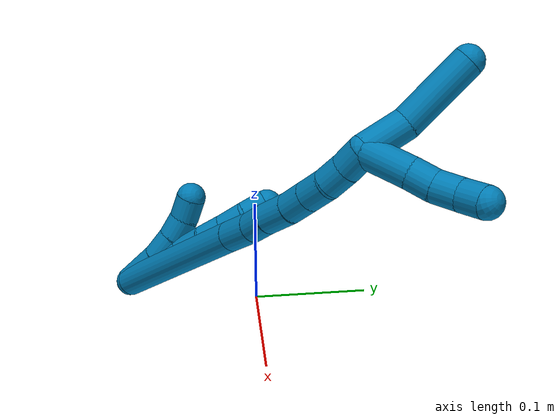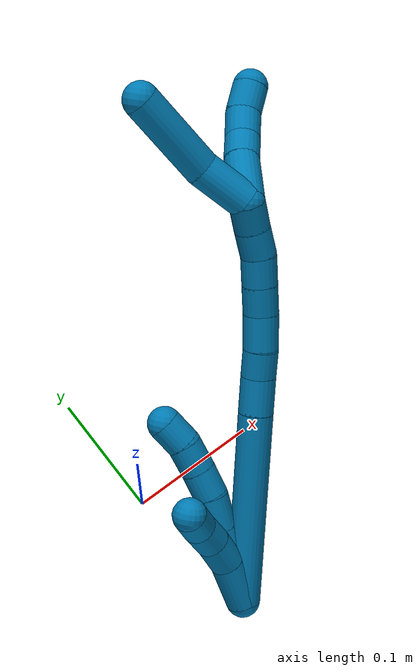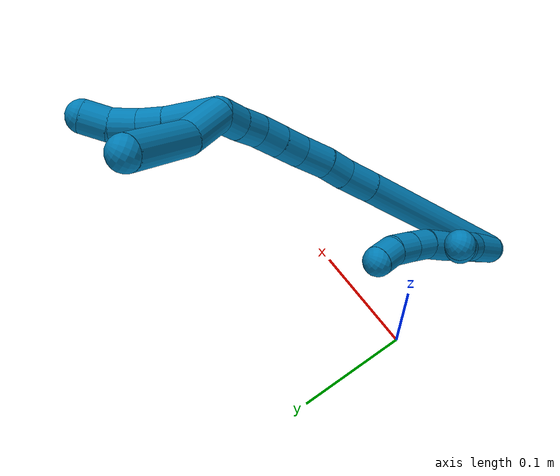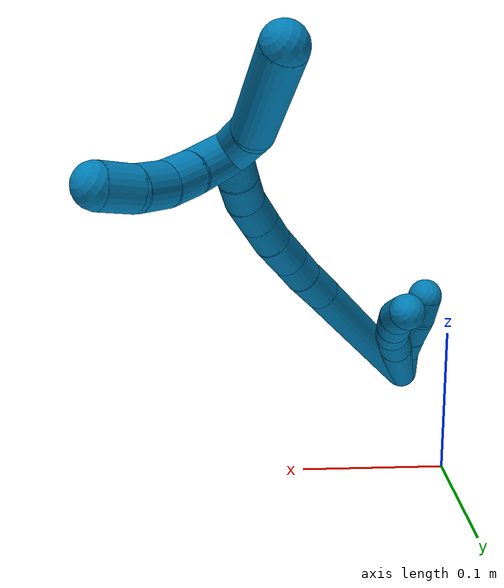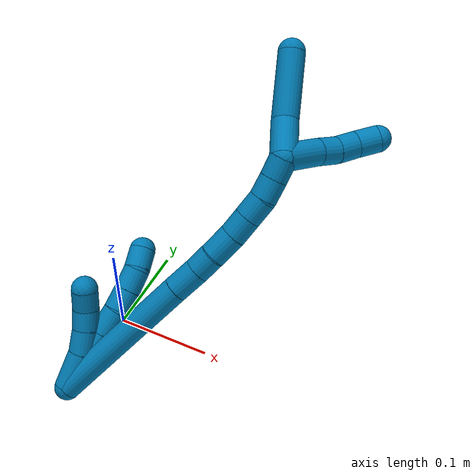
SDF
<sdf version="1.7">
 <world name="default">
  <model name="photoneo_s_sensor">
   <static>1</static>
   <pose>0 0 2 1.57079 1.57079 3.14159</pose>
   <link name="link">
    <inertial><mass>0.1</mass></inertial>
    <sensor name="sensor" type="depth">
     <update_rate>30</update_rate>
     <camera>
      <horizontal_fov>1.22</horizontal_fov>
      <image><width>1920</width><height>1200</height><format>B8G8R8</format></image>
      <clip><near>0.1</near><far>4</far></clip>
      <depth_camera><output>points</output></depth_camera>
     </camera>
     <plugin name="camera_plugin" filename="libgazebo_ros_depth_camera.so">
      <baseline>0.2</baseline>
      <alwaysOn>1</alwaysOn>
      <updateRate>0.0</updateRate>
      <cameraName>camera_ir</cameraName>
      <imageTopicName>/camera/color/image_raw</imageTopicName>
      <cameraInfoTopicName>/camera/color/camera_info</cameraInfoTopicName>
      <depthImageTopicName>/camera/depth/image_raw</depthImageTopicName>
      <depthImageCameraInfoTopicName>/camera/depth/camera_info</depthImageCameraInfoTopicName>
      <pointCloudTopicName>/camera/depth/points</pointCloudTopicName>
      <frameName>fr_optical</frameName>
      <pointCloudCutoff>0.1</pointCloudCutoff>
      <pointCloudCutoffMax>2.0</pointCloudCutoffMax>
      <distortionK1>0</distortionK1>
      <distortionK2>0</distortionK2>
      <distortionK3>0</distortionK3>
      <distortionT1>0</distortionT1>
      <distortionT2>0</distortionT2>
      <CxPrime>0</CxPrime>
      <Cx>0</Cx>
      <Cy>0</Cy>
      <focalLength>0</focalLength>
      <hackBaseline>0</hackBaseline>
     </plugin>
    </sensor>
   </link>
  </model>
  <model name="bin">
   <static>1</static>
   <link name="bottom">
    <collision name="collision-bottom">
     <pose>0 0 -0.01 0 -0 0</pose>
     <geometry><box><size>0.8 0.6 0.02</size></box></geometry>
     <surface>
      <friction><ode><mu>100</mu><mu2>100</mu2></ode></friction>
      <contact><collide_bitmask>65535</collide_bitmask></contact>
     </surface>
    </collision>
   </link>
   <link name="west_wall">
    <collision name="collision-west_wall">
     <pose>-0.41 0 0.1 0 -0 0</pose>
     <geometry><box><size>0.02 0.6 0.2</size></box></geometry>
     <surface>
      <friction><ode><mu>100</mu><mu2>100</mu2></ode></friction>
      <contact><collide_bitmask>65535</collide_bitmask></contact>
     </surface>
    </collision>
   </link>
   <link name="east_wall">
    <collision name="collision-east_wall">
     <pose>0.41 0 0.1 0 -0 0</pose>
     <geometry><box><size>0.02 0.6 0.2</size></box></geometry>
     <surface>
      <friction><ode><mu>100</mu><mu2>100</mu2></ode></friction>
      <contact><collide_bitmask>65535</collide_bitmask></contact>
     </surface>
    </collision>
   </link>
   <link name="south_wall">
    <collision name="collision-south_wall">
     <pose>0 -0.31 0.1 0 -0 0</pose>
     <geometry><box><size>0.8 0.02 0.2</size></box></geometry>
     <surface>
      <friction><ode><mu>100</mu><mu2>100</mu2></ode></friction>
      <contact><collide_bitmask>65535</collide_bitmask></contact>
     </surface>
    </collision>
   </link>
   <link name="north_wall">
    <collision name="collision-north_wall">
     <pose>0 0.31 0.1 0 -0 0</pose>
     <geometry><box><size>0.8 0.02 0.2</size></box></geometry>
     <surface>
      <friction><ode><mu>100</mu><mu2>100</mu2></ode></friction>
      <contact><collide_bitmask>65535</collide_bitmask></contact>
     </surface>
    </collision>
   </link>
  </model>
  <model name="9">
   <static>0</static>
   <link name="9">
    <collision name="collision-cylinder-e_1_2_8">
     <pose>-0.001042 -0.012691 0.027691 0.429744 -0.034195 -0.007463</pose>
     <geometry><cylinder><radius>0.0125</radius><length>0.060957</length></cylinder></geometry>
     <surface>
      <friction><ode><mu>1.16</mu><mu2>1.16</mu2><slip1>0</slip1><slip2>0</slip2></ode></friction>
      <contact><ode><kp>1e+06</kp><kd>1</kd><max_vel>0</max_vel><min_depth>0.001</min_depth></ode></contact>
     </surface>
    </collision>
    <visual name="visual-cylinder-e_1_2_8">
     <pose>-0.001042 -0.012691 0.027691 0.429744 -0.034195 -0.007463</pose>
     <geometry><cylinder><radius>0.0125</radius><length>0.060957</length></cylinder></geometry>
     <material><ambient>0 0.490196 0.709804 1</ambient></material>
    </visual>
    <collision name="collision-cylinder-e_2_8_9">
     <pose>-0.002292 -0.030456 0.067186 0.405956 -0.016207 -0.003336</pose>
     <geometry><cylinder><radius>0.0125</radius><length>0.025701</length></cylinder></geometry>
     <surface>
      <friction><ode><mu>1.16</mu><mu2>1.16</mu2><slip1>0</slip1><slip2>0</slip2></ode></friction>
      <contact><ode><kp>1e+06</kp><kd>1</kd><max_vel>0</max_vel><min_depth>0.001</min_depth></ode></contact>
     </surface>
    </collision>
    <visual name="visual-cylinder-e_2_8_9">
     <pose>-0.002292 -0.030456 0.067186 0.405956 -0.016207 -0.003336</pose>
     <geometry><cylinder><radius>0.0125</radius><length>0.025701</length></cylinder></geometry>
     <material><ambient>0 0.490196 0.709804 1</ambient></material>
    </visual>
    <collision name="collision-cylinder-e_3_9_10">
     <pose>-0.003651 -0.041199 0.087807 0.571453 -0.109304 -0.032139</pose>
     <geometry><cylinder><radius>0.0125</radius><length>0.021091</length></cylinder></geometry>
     <surface>
      <friction><ode><mu>1.16</mu><mu2>1.16</mu2><slip1>0</slip1><slip2>0</slip2></ode></friction>
      <contact><ode><kp>1e+06</kp><kd>1</kd><max_vel>0</max_vel><min_depth>0.001</min_depth></ode></contact>
     </surface>
    </collision>
    <visual name="visual-cylinder-e_3_9_10">
     <pose>-0.003651 -0.041199 0.087807 0.571453 -0.109304 -0.032139</pose>
     <geometry><cylinder><radius>0.0125</radius><length>0.021091</length></cylinder></geometry>
     <material><ambient>0 0.490196 0.709804 1</ambient></material>
    </visual>
    <collision name="collision-cylinder-e_4_10_11">
     <pose>-0.005737 -0.053139 0.105584 0.610632 -0.085329 -0.026908</pose>
     <geometry><cylinder><radius>0.0125</radius><length>0.021952</length></cylinder></geometry>
     <surface>
      <friction><ode><mu>1.16</mu><mu2>1.16</mu2><slip1>0</slip1><slip2>0</slip2></ode></friction>
      <contact><ode><kp>1e+06</kp><kd>1</kd><max_vel>0</max_vel><min_depth>0.001</min_depth></ode></contact>
     </surface>
    </collision>
    <visual name="visual-cylinder-e_4_10_11">
     <pose>-0.005737 -0.053139 0.105584 0.610632 -0.085329 -0.026908</pose>
     <geometry><cylinder><radius>0.0125</radius><length>0.021952</length></cylinder></geometry>
     <material><ambient>0 0.490196 0.709804 1</ambient></material>
    </visual>
    <collision name="collision-cylinder-e_5_11_6">
     <pose>-0.008732 -0.066951 0.121018 0.861403 -0.204415 -0.094181</pose>
     <geometry><cylinder><radius>0.0125</radius><length>0.0203</length></cylinder></geometry>
     <surface>
      <friction><ode><mu>1.16</mu><mu2>1.16</mu2><slip1>0</slip1><slip2>0</slip2></ode></friction>
      <contact><ode><kp>1e+06</kp><kd>1</kd><max_vel>0</max_vel><min_depth>0.001</min_depth></ode></contact>
     </surface>
    </collision>
    <visual name="visual-cylinder-e_5_11_6">
     <pose>-0.008732 -0.066951 0.121018 0.861403 -0.204415 -0.094181</pose>
     <geometry><cylinder><radius>0.0125</radius><length>0.0203</length></cylinder></geometry>
     <material><ambient>0 0.490196 0.709804 1</ambient></material>
    </visual>
    <collision name="collision-cylinder-e_1_2_12">
     <pose>0.002351 -0.009175 0.015593 0.531866 0.12921 0.03524</pose>
     <geometry><cylinder><radius>0.0125</radius><length>0.036488</length></cylinder></geometry>
     <surface>
      <friction><ode><mu>1.16</mu><mu2>1.16</mu2><slip1>0</slip1><slip2>0</slip2></ode></friction>
      <contact><ode><kp>1e+06</kp><kd>1</kd><max_vel>0</max_vel><min_depth>0.001</min_depth></ode></contact>
     </surface>
    </collision>
    <visual name="visual-cylinder-e_1_2_12">
     <pose>0.002351 -0.009175 0.015593 0.531866 0.12921 0.03524</pose>
     <geometry><cylinder><radius>0.0125</radius><length>0.036488</length></cylinder></geometry>
     <material><ambient>0 0.490196 0.709804 1</ambient></material>
    </visual>
    <collision name="collision-cylinder-e_2_12_13">
     <pose>0.007444 -0.025876 0.039642 0.727201 0.237667 0.090803</pose>
     <geometry><cylinder><radius>0.0125</radius><length>0.023294</length></cylinder></geometry>
     <surface>
      <friction><ode><mu>1.16</mu><mu2>1.16</mu2><slip1>0</slip1><slip2>0</slip2></ode></friction>
      <contact><ode><kp>1e+06</kp><kd>1</kd><max_vel>0</max_vel><min_depth>0.001</min_depth></ode></contact>
     </surface>
    </collision>
    <visual name="visual-cylinder-e_2_12_13">
     <pose>0.007444 -0.025876 0.039642 0.727201 0.237667 0.090803</pose>
     <geometry><cylinder><radius>0.0125</radius><length>0.023294</length></cylinder></geometry>
     <material><ambient>0 0.490196 0.709804 1</ambient></material>
    </visual>
    <collision name="collision-cylinder-e_3_13_14">
     <pose>0.013652 -0.040306 0.054514 0.822162 0.352382 0.154908</pose>
     <geometry><cylinder><radius>0.0125</radius><length>0.020086</length></cylinder></geometry>
     <surface>
      <friction><ode><mu>1.16</mu><mu2>1.16</mu2><slip1>0</slip1><slip2>0</slip2></ode></friction>
      <contact><ode><kp>1e+06</kp><kd>1</kd><max_vel>0</max_vel><min_depth>0.001</min_depth></ode></contact>
     </surface>
    </collision>
    <visual name="visual-cylinder-e_3_13_14">
     <pose>0.013652 -0.040306 0.054514 0.822162 0.352382 0.154908</pose>
     <geometry><cylinder><radius>0.0125</radius><length>0.020086</length></cylinder></geometry>
     <material><ambient>0 0.490196 0.709804 1</ambient></material>
    </visual>
    <collision name="collision-cylinder-e_4_14_5">
     <pose>0.02248 -0.053026 0.067155 0.751201 0.56177 0.226559</pose>
     <geometry><cylinder><radius>0.0125</radius><length>0.020132</length></cylinder></geometry>
     <surface>
      <friction><ode><mu>1.16</mu><mu2>1.16</mu2><slip1>0</slip1><slip2>0</slip2></ode></friction>
      <contact><ode><kp>1e+06</kp><kd>1</kd><max_vel>0</max_vel><min_depth>0.001</min_depth></ode></contact>
     </surface>
    </collision>
    <visual name="visual-cylinder-e_4_14_5">
     <pose>0.02248 -0.053026 0.067155 0.751201 0.56177 0.226559</pose>
     <geometry><cylinder><radius>0.0125</radius><length>0.020132</length></cylinder></geometry>
     <material><ambient>0 0.490196 0.709804 1</ambient></material>
    </visual>
    <collision name="collision-cylinder-e_1_2_15">
     <pose>0.003606 -0.007189 0.072276 0.099144 0.049613 0.002462</pose>
     <geometry><cylinder><radius>0.0125</radius><length>0.145444</length></cylinder></geometry>
     <surface>
      <friction><ode><mu>1.16</mu><mu2>1.16</mu2><slip1>0</slip1><slip2>0</slip2></ode></friction>
      <contact><ode><kp>1e+06</kp><kd>1</kd><max_vel>0</max_vel><min_depth>0.001</min_depth></ode></contact>
     </surface>
    </collision>
    <visual name="visual-cylinder-e_1_2_15">
     <pose>0.003606 -0.007189 0.072276 0.099144 0.049613 0.002462</pose>
     <geometry><cylinder><radius>0.0125</radius><length>0.145444</length></cylinder></geometry>
     <material><ambient>0 0.490196 0.709804 1</ambient></material>
    </visual>
    <collision name="collision-cylinder-e_2_15_16">
     <pose>0.007646 -0.015597 0.157977 0.090542 0.032081 0.001453</pose>
     <geometry><cylinder><radius>0.0125</radius><length>0.026975</length></cylinder></geometry>
     <surface>
      <friction><ode><mu>1.16</mu><mu2>1.16</mu2><slip1>0</slip1><slip2>0</slip2></ode></friction>
      <contact><ode><kp>1e+06</kp><kd>1</kd><max_vel>0</max_vel><min_depth>0.001</min_depth></ode></contact>
     </surface>
    </collision>
    <visual name="visual-cylinder-e_2_15_16">
     <pose>0.007646 -0.015597 0.157977 0.090542 0.032081 0.001453</pose>
     <geometry><cylinder><radius>0.0125</radius><length>0.026975</length></cylinder></geometry>
     <material><ambient>0 0.490196 0.709804 1</ambient></material>
    </visual>
    <collision name="collision-cylinder-e_3_16_17">
     <pose>0.009262 -0.017839 0.18131 0.102845 0.118345 0.006098</pose>
     <geometry><cylinder><radius>0.0125</radius><length>0.020061</length></cylinder></geometry>
     <surface>
      <friction><ode><mu>1.16</mu><mu2>1.16</mu2><slip1>0</slip1><slip2>0</slip2></ode></friction>
      <contact><ode><kp>1e+06</kp><kd>1</kd><max_vel>0</max_vel><min_depth>0.001</min_depth></ode></contact>
     </surface>
    </collision>
    <visual name="visual-cylinder-e_3_16_17">
     <pose>0.009262 -0.017839 0.18131 0.102845 0.118345 0.006098</pose>
     <geometry><cylinder><radius>0.0125</radius><length>0.020061</length></cylinder></geometry>
     <material><ambient>0 0.490196 0.709804 1</ambient></material>
    </visual>
    <collision name="collision-cylinder-e_4_17_18">
     <pose>0.010799 -0.020891 0.203844 0.15937 0.027548 0.0022</pose>
     <geometry><cylinder><radius>0.0125</radius><length>0.025586</length></cylinder></geometry>
     <surface>
      <friction><ode><mu>1.16</mu><mu2>1.16</mu2><slip1>0</slip1><slip2>0</slip2></ode></friction>
      <contact><ode><kp>1e+06</kp><kd>1</kd><max_vel>0</max_vel><min_depth>0.001</min_depth></ode></contact>
     </surface>
    </collision>
    <visual name="visual-cylinder-e_4_17_18">
     <pose>0.010799 -0.020891 0.203844 0.15937 0.027548 0.0022</pose>
     <geometry><cylinder><radius>0.0125</radius><length>0.025586</length></cylinder></geometry>
     <material><ambient>0 0.490196 0.709804 1</ambient></material>
    </visual>
    <collision name="collision-cylinder-e_5_18_19">
     <pose>0.012325 -0.025282 0.22666 0.227769 0.111744 0.012794</pose>
     <geometry><cylinder><radius>0.0125</radius><length>0.021053</length></cylinder></geometry>
     <surface>
      <friction><ode><mu>1.16</mu><mu2>1.16</mu2><slip1>0</slip1><slip2>0</slip2></ode></friction>
      <contact><ode><kp>1e+06</kp><kd>1</kd><max_vel>0</max_vel><min_depth>0.001</min_depth></ode></contact>
     </surface>
    </collision>
    <visual name="visual-cylinder-e_5_18_19">
     <pose>0.012325 -0.025282 0.22666 0.227769 0.111744 0.012794</pose>
     <geometry><cylinder><radius>0.0125</radius><length>0.021053</length></cylinder></geometry>
     <material><ambient>0 0.490196 0.709804 1</ambient></material>
    </visual>
    <collision name="collision-cylinder-e_6_19_20">
     <pose>0.014669 -0.02999 0.246953 0.228127 0.112371 0.012887</pose>
     <geometry><cylinder><radius>0.0125</radius><length>0.020874</length></cylinder></geometry>
     <surface>
      <friction><ode><mu>1.16</mu><mu2>1.16</mu2><slip1>0</slip1><slip2>0</slip2></ode></friction>
      <contact><ode><kp>1e+06</kp><kd>1</kd><max_vel>0</max_vel><min_depth>0.001</min_depth></ode></contact>
     </surface>
    </collision>
    <visual name="visual-cylinder-e_6_19_20">
     <pose>0.014669 -0.02999 0.246953 0.228127 0.112371 0.012887</pose>
     <geometry><cylinder><radius>0.0125</radius><length>0.020874</length></cylinder></geometry>
     <material><ambient>0 0.490196 0.709804 1</ambient></material>
    </visual>
    <collision name="collision-cylinder-e_7_20_21">
     <pose>0.01734 -0.03649 0.266027 0.433726 0.150632 0.033248</pose>
     <geometry><cylinder><radius>0.0125</radius><length>0.02</length></cylinder></geometry>
     <surface>
      <friction><ode><mu>1.16</mu><mu2>1.16</mu2><slip1>0</slip1><slip2>0</slip2></ode></friction>
      <contact><ode><kp>1e+06</kp><kd>1</kd><max_vel>0</max_vel><min_depth>0.001</min_depth></ode></contact>
     </surface>
    </collision>
    <visual name="visual-cylinder-e_7_20_21">
     <pose>0.01734 -0.03649 0.266027 0.433726 0.150632 0.033248</pose>
     <geometry><cylinder><radius>0.0125</radius><length>0.02</length></cylinder></geometry>
     <material><ambient>0 0.490196 0.709804 1</ambient></material>
    </visual>
    <collision name="collision-cylinder-e_8_21_1">
     <pose>0.021237 -0.044666 0.28384 0.426781 0.241808 0.052642</pose>
     <geometry><cylinder><radius>0.0125</radius><length>0.020008</length></cylinder></geometry>
     <surface>
      <friction><ode><mu>1.16</mu><mu2>1.16</mu2><slip1>0</slip1><slip2>0</slip2></ode></friction>
      <contact><ode><kp>1e+06</kp><kd>1</kd><max_vel>0</max_vel><min_depth>0.001</min_depth></ode></contact>
     </surface>
    </collision>
    <visual name="visual-cylinder-e_8_21_1">
     <pose>0.021237 -0.044666 0.28384 0.426781 0.241808 0.052642</pose>
     <geometry><cylinder><radius>0.0125</radius><length>0.020008</length></cylinder></geometry>
     <material><ambient>0 0.490196 0.709804 1</ambient></material>
    </visual>
    <collision name="collision-cylinder-e_1_1_22">
     <pose>0.009332 -0.047869 0.305106 -0.065708 -0.854365 0.02992</pose>
     <geometry><cylinder><radius>0.0125</radius><length>0.037922</length></cylinder></geometry>
     <surface>
      <friction><ode><mu>1.16</mu><mu2>1.16</mu2><slip1>0</slip1><slip2>0</slip2></ode></friction>
      <contact><ode><kp>1e+06</kp><kd>1</kd><max_vel>0</max_vel><min_depth>0.001</min_depth></ode></contact>
     </surface>
    </collision>
    <visual name="visual-cylinder-e_1_1_22">
     <pose>0.009332 -0.047869 0.305106 -0.065708 -0.854365 0.02992</pose>
     <geometry><cylinder><radius>0.0125</radius><length>0.037922</length></cylinder></geometry>
     <material><ambient>0 0.490196 0.709804 1</ambient></material>
    </visual>
    <collision name="collision-cylinder-e_2_22_23">
     <pose>-0.012118 -0.045525 0.324484 -0.216019 -0.787634 0.090051</pose>
     <geometry><cylinder><radius>0.0125</radius><length>0.02018</length></cylinder></geometry>
     <surface>
      <friction><ode><mu>1.16</mu><mu2>1.16</mu2><slip1>0</slip1><slip2>0</slip2></ode></friction>
      <contact><ode><kp>1e+06</kp><kd>1</kd><max_vel>0</max_vel><min_depth>0.001</min_depth></ode></contact>
     </surface>
    </collision>
    <visual name="visual-cylinder-e_2_22_23">
     <pose>-0.012118 -0.045525 0.324484 -0.216019 -0.787634 0.090051</pose>
     <geometry><cylinder><radius>0.0125</radius><length>0.02018</length></cylinder></geometry>
     <material><ambient>0 0.490196 0.709804 1</ambient></material>
    </visual>
    <collision name="collision-cylinder-e_3_23_24">
     <pose>-0.02526 -0.043183 0.33992 -0.095957 -0.612805 0.030379</pose>
     <geometry><cylinder><radius>0.0125</radius><length>0.020833</length></cylinder></geometry>
     <surface>
      <friction><ode><mu>1.16</mu><mu2>1.16</mu2><slip1>0</slip1><slip2>0</slip2></ode></friction>
      <contact><ode><kp>1e+06</kp><kd>1</kd><max_vel>0</max_vel><min_depth>0.001</min_depth></ode></contact>
     </surface>
    </collision>
    <visual name="visual-cylinder-e_3_23_24">
     <pose>-0.02526 -0.043183 0.33992 -0.095957 -0.612805 0.030379</pose>
     <geometry><cylinder><radius>0.0125</radius><length>0.020833</length></cylinder></geometry>
     <material><ambient>0 0.490196 0.709804 1</ambient></material>
    </visual>
    <collision name="collision-cylinder-e_4_24_4">
     <pose>-0.035136 -0.039934 0.357884 -0.251091 -0.377788 0.048246</pose>
     <geometry><cylinder><radius>0.0125</radius><length>0.021064</length></cylinder></geometry>
     <surface>
      <friction><ode><mu>1.16</mu><mu2>1.16</mu2><slip1>0</slip1><slip2>0</slip2></ode></friction>
      <contact><ode><kp>1e+06</kp><kd>1</kd><max_vel>0</max_vel><min_depth>0.001</min_depth></ode></contact>
     </surface>
    </collision>
    <visual name="visual-cylinder-e_4_24_4">
     <pose>-0.035136 -0.039934 0.357884 -0.251091 -0.377788 0.048246</pose>
     <geometry><cylinder><radius>0.0125</radius><length>0.021064</length></cylinder></geometry>
     <material><ambient>0 0.490196 0.709804 1</ambient></material>
    </visual>
    <collision name="collision-cylinder-e_1_1_25">
     <pose>0.01969 -0.064479 0.301713 1.05128 -0.21339 -0.124094</pose>
     <geometry><cylinder><radius>0.0125</radius><length>0.03723</length></cylinder></geometry>
     <surface>
      <friction><ode><mu>1.16</mu><mu2>1.16</mu2><slip1>0</slip1><slip2>0</slip2></ode></friction>
      <contact><ode><kp>1e+06</kp><kd>1</kd><max_vel>0</max_vel><min_depth>0.001</min_depth></ode></contact>
     </surface>
    </collision>
    <visual name="visual-cylinder-e_1_1_25">
     <pose>0.01969 -0.064479 0.301713 1.05128 -0.21339 -0.124094</pose>
     <geometry><cylinder><radius>0.0125</radius><length>0.03723</length></cylinder></geometry>
     <material><ambient>0 0.490196 0.709804 1</ambient></material>
    </visual>
    <collision name="collision-cylinder-e_2_25_3">
     <pose>0.018226 -0.104524 0.330511 0.886993 0.079054 0.037571</pose>
     <geometry><cylinder><radius>0.0125</radius><length>0.06277</length></cylinder></geometry>
     <surface>
      <friction><ode><mu>1.16</mu><mu2>1.16</mu2><slip1>0</slip1><slip2>0</slip2></ode></friction>
      <contact><ode><kp>1e+06</kp><kd>1</kd><max_vel>0</max_vel><min_depth>0.001</min_depth></ode></contact>
     </surface>
    </collision>
    <visual name="visual-cylinder-e_2_25_3">
     <pose>0.018226 -0.104524 0.330511 0.886993 0.079054 0.037571</pose>
     <geometry><cylinder><radius>0.0125</radius><length>0.06277</length></cylinder></geometry>
     <material><ambient>0 0.490196 0.709804 1</ambient></material>
    </visual>
    <collision name="collision-sphere-3">
     <pose>0.020705 -0.128777 0.350276 0 -0 0</pose>
     <geometry><sphere><radius>0.0125</radius></sphere></geometry>
     <surface>
      <friction><ode><mu>1.16</mu><mu2>1.16</mu2><slip1>0</slip1><slip2>0</slip2></ode></friction>
      <contact><ode><kp>1e+06</kp><kd>1</kd><max_vel>0</max_vel><min_depth>0.001</min_depth></ode></contact>
     </surface>
    </collision>
    <visual name="visual-sphere-3">
     <pose>0.020705 -0.128777 0.350276 0 -0 0</pose>
     <geometry><sphere><radius>0.0125</radius></sphere></geometry>
     <material><ambient>0 0.490196 0.709804 1</ambient></material>
    </visual>
    <collision name="collision-sphere-25">
     <pose>0.015748 -0.080271 0.310745 0 -0 0</pose>
     <geometry><sphere><radius>0.0125</radius></sphere></geometry>
     <surface>
      <friction><ode><mu>1.16</mu><mu2>1.16</mu2><slip1>0</slip1><slip2>0</slip2></ode></friction>
      <contact><ode><kp>1e+06</kp><kd>1</kd><max_vel>0</max_vel><min_depth>0.001</min_depth></ode></contact>
     </surface>
    </collision>
    <visual name="visual-sphere-25">
     <pose>0.015748 -0.080271 0.310745 0 -0 0</pose>
     <geometry><sphere><radius>0.0125</radius></sphere></geometry>
     <material><ambient>0 0.490196 0.709804 1</ambient></material>
    </visual>
    <collision name="collision-sphere-4">
     <pose>-0.039021 -0.037502 0.367367 0 -0 0</pose>
     <geometry><sphere><radius>0.0125</radius></sphere></geometry>
     <surface>
      <friction><ode><mu>1.16</mu><mu2>1.16</mu2><slip1>0</slip1><slip2>0</slip2></ode></friction>
      <contact><ode><kp>1e+06</kp><kd>1</kd><max_vel>0</max_vel><min_depth>0.001</min_depth></ode></contact>
     </surface>
    </collision>
    <visual name="visual-sphere-4">
     <pose>-0.039021 -0.037502 0.367367 0 -0 0</pose>
     <geometry><sphere><radius>0.0125</radius></sphere></geometry>
     <material><ambient>0 0.490196 0.709804 1</ambient></material>
    </visual>
    <collision name="collision-sphere-24">
     <pose>-0.031251 -0.042367 0.348402 0 -0 0</pose>
     <geometry><sphere><radius>0.0125</radius></sphere></geometry>
     <surface>
      <friction><ode><mu>1.16</mu><mu2>1.16</mu2><slip1>0</slip1><slip2>0</slip2></ode></friction>
      <contact><ode><kp>1e+06</kp><kd>1</kd><max_vel>0</max_vel><min_depth>0.001</min_depth></ode></contact>
     </surface>
    </collision>
    <visual name="visual-sphere-24">
     <pose>-0.031251 -0.042367 0.348402 0 -0 0</pose>
     <geometry><sphere><radius>0.0125</radius></sphere></geometry>
     <material><ambient>0 0.490196 0.709804 1</ambient></material>
    </visual>
    <collision name="collision-sphere-23">
     <pose>-0.019268 -0.044 0.331438 0 -0 0</pose>
     <geometry><sphere><radius>0.0125</radius></sphere></geometry>
     <surface>
      <friction><ode><mu>1.16</mu><mu2>1.16</mu2><slip1>0</slip1><slip2>0</slip2></ode></friction>
      <contact><ode><kp>1e+06</kp><kd>1</kd><max_vel>0</max_vel><min_depth>0.001</min_depth></ode></contact>
     </surface>
    </collision>
    <visual name="visual-sphere-23">
     <pose>-0.019268 -0.044 0.331438 0 -0 0</pose>
     <geometry><sphere><radius>0.0125</radius></sphere></geometry>
     <material><ambient>0 0.490196 0.709804 1</ambient></material>
    </visual>
    <collision name="collision-sphere-22">
     <pose>-0.004967 -0.047051 0.317531 0 -0 0</pose>
     <geometry><sphere><radius>0.0125</radius></sphere></geometry>
     <surface>
      <friction><ode><mu>1.16</mu><mu2>1.16</mu2><slip1>0</slip1><slip2>0</slip2></ode></friction>
      <contact><ode><kp>1e+06</kp><kd>1</kd><max_vel>0</max_vel><min_depth>0.001</min_depth></ode></contact>
     </surface>
    </collision>
    <visual name="visual-sphere-22">
     <pose>-0.004967 -0.047051 0.317531 0 -0 0</pose>
     <geometry><sphere><radius>0.0125</radius></sphere></geometry>
     <material><ambient>0 0.490196 0.709804 1</ambient></material>
    </visual>
    <collision name="collision-sphere-1">
     <pose>0.023632 -0.048686 0.292681 0 -0 0</pose>
     <geometry><sphere><radius>0.0125</radius></sphere></geometry>
     <surface>
      <friction><ode><mu>1.16</mu><mu2>1.16</mu2><slip1>0</slip1><slip2>0</slip2></ode></friction>
      <contact><ode><kp>1e+06</kp><kd>1</kd><max_vel>0</max_vel><min_depth>0.001</min_depth></ode></contact>
     </surface>
    </collision>
    <visual name="visual-sphere-1">
     <pose>0.023632 -0.048686 0.292681 0 -0 0</pose>
     <geometry><sphere><radius>0.0125</radius></sphere></geometry>
     <material><ambient>0 0.490196 0.709804 1</ambient></material>
    </visual>
    <collision name="collision-sphere-21">
     <pose>0.018841 -0.040645 0.274998 0 -0 0</pose>
     <geometry><sphere><radius>0.0125</radius></sphere></geometry>
     <surface>
      <friction><ode><mu>1.16</mu><mu2>1.16</mu2><slip1>0</slip1><slip2>0</slip2></ode></friction>
      <contact><ode><kp>1e+06</kp><kd>1</kd><max_vel>0</max_vel><min_depth>0.001</min_depth></ode></contact>
     </surface>
    </collision>
    <visual name="visual-sphere-21">
     <pose>0.018841 -0.040645 0.274998 0 -0 0</pose>
     <geometry><sphere><radius>0.0125</radius></sphere></geometry>
     <material><ambient>0 0.490196 0.709804 1</ambient></material>
    </visual>
    <collision name="collision-sphere-6">
     <pose>-0.010793 -0.074492 0.127491 0 -0 0</pose>
     <geometry><sphere><radius>0.0125</radius></sphere></geometry>
     <surface>
      <friction><ode><mu>1.16</mu><mu2>1.16</mu2><slip1>0</slip1><slip2>0</slip2></ode></friction>
      <contact><ode><kp>1e+06</kp><kd>1</kd><max_vel>0</max_vel><min_depth>0.001</min_depth></ode></contact>
     </surface>
    </collision>
    <visual name="visual-sphere-6">
     <pose>-0.010793 -0.074492 0.127491 0 -0 0</pose>
     <geometry><sphere><radius>0.0125</radius></sphere></geometry>
     <material><ambient>0 0.490196 0.709804 1</ambient></material>
    </visual>
    <collision name="collision-sphere-11">
     <pose>-0.006672 -0.05941 0.114544 0 -0 0</pose>
     <geometry><sphere><radius>0.0125</radius></sphere></geometry>
     <surface>
      <friction><ode><mu>1.16</mu><mu2>1.16</mu2><slip1>0</slip1><slip2>0</slip2></ode></friction>
      <contact><ode><kp>1e+06</kp><kd>1</kd><max_vel>0</max_vel><min_depth>0.001</min_depth></ode></contact>
     </surface>
    </collision>
    <visual name="visual-sphere-11">
     <pose>-0.006672 -0.05941 0.114544 0 -0 0</pose>
     <geometry><sphere><radius>0.0125</radius></sphere></geometry>
     <material><ambient>0 0.490196 0.709804 1</ambient></material>
    </visual>
    <collision name="collision-sphere-10">
     <pose>-0.004801 -0.046869 0.096624 0 -0 0</pose>
     <geometry><sphere><radius>0.0125</radius></sphere></geometry>
     <surface>
      <friction><ode><mu>1.16</mu><mu2>1.16</mu2><slip1>0</slip1><slip2>0</slip2></ode></friction>
      <contact><ode><kp>1e+06</kp><kd>1</kd><max_vel>0</max_vel><min_depth>0.001</min_depth></ode></contact>
     </surface>
    </collision>
    <visual name="visual-sphere-10">
     <pose>-0.004801 -0.046869 0.096624 0 -0 0</pose>
     <geometry><sphere><radius>0.0125</radius></sphere></geometry>
     <material><ambient>0 0.490196 0.709804 1</ambient></material>
    </visual>
    <collision name="collision-sphere-9">
     <pose>-0.0025 -0.03553 0.07899 0 -0 0</pose>
     <geometry><sphere><radius>0.0125</radius></sphere></geometry>
     <surface>
      <friction><ode><mu>1.16</mu><mu2>1.16</mu2><slip1>0</slip1><slip2>0</slip2></ode></friction>
      <contact><ode><kp>1e+06</kp><kd>1</kd><max_vel>0</max_vel><min_depth>0.001</min_depth></ode></contact>
     </surface>
    </collision>
    <visual name="visual-sphere-9">
     <pose>-0.0025 -0.03553 0.07899 0 -0 0</pose>
     <geometry><sphere><radius>0.0125</radius></sphere></geometry>
     <material><ambient>0 0.490196 0.709804 1</ambient></material>
    </visual>
    <collision name="collision-sphere-2">
     <geometry><sphere><radius>0.0125</radius></sphere></geometry>
     <surface>
      <friction><ode><mu>1.16</mu><mu2>1.16</mu2><slip1>0</slip1><slip2>0</slip2></ode></friction>
      <contact><ode><kp>1e+06</kp><kd>1</kd><max_vel>0</max_vel><min_depth>0.001</min_depth></ode></contact>
     </surface>
    </collision>
    <visual name="visual-sphere-2">
     <geometry><sphere><radius>0.0125</radius></sphere></geometry>
     <material><ambient>0 0.490196 0.709804 1</ambient></material>
    </visual>
    <collision name="collision-sphere-19">
     <pose>0.013499 -0.027644 0.236851 0 -0 0</pose>
     <geometry><sphere><radius>0.0125</radius></sphere></geometry>
     <surface>
      <friction><ode><mu>1.16</mu><mu2>1.16</mu2><slip1>0</slip1><slip2>0</slip2></ode></friction>
      <contact><ode><kp>1e+06</kp><kd>1</kd><max_vel>0</max_vel><min_depth>0.001</min_depth></ode></contact>
     </surface>
    </collision>
    <visual name="visual-sphere-19">
     <pose>0.013499 -0.027644 0.236851 0 -0 0</pose>
     <geometry><sphere><radius>0.0125</radius></sphere></geometry>
     <material><ambient>0 0.490196 0.709804 1</ambient></material>
    </visual>
    <collision name="collision-sphere-8">
     <pose>-0.002084 -0.025382 0.055382 0 -0 0</pose>
     <geometry><sphere><radius>0.0125</radius></sphere></geometry>
     <surface>
      <friction><ode><mu>1.16</mu><mu2>1.16</mu2><slip1>0</slip1><slip2>0</slip2></ode></friction>
      <contact><ode><kp>1e+06</kp><kd>1</kd><max_vel>0</max_vel><min_depth>0.001</min_depth></ode></contact>
     </surface>
    </collision>
    <visual name="visual-sphere-8">
     <pose>-0.002084 -0.025382 0.055382 0 -0 0</pose>
     <geometry><sphere><radius>0.0125</radius></sphere></geometry>
     <material><ambient>0 0.490196 0.709804 1</ambient></material>
    </visual>
    <collision name="collision-sphere-12">
     <pose>0.004702 -0.018351 0.031186 0 -0 0</pose>
     <geometry><sphere><radius>0.0125</radius></sphere></geometry>
     <surface>
      <friction><ode><mu>1.16</mu><mu2>1.16</mu2><slip1>0</slip1><slip2>0</slip2></ode></friction>
      <contact><ode><kp>1e+06</kp><kd>1</kd><max_vel>0</max_vel><min_depth>0.001</min_depth></ode></contact>
     </surface>
    </collision>
    <visual name="visual-sphere-12">
     <pose>0.004702 -0.018351 0.031186 0 -0 0</pose>
     <geometry><sphere><radius>0.0125</radius></sphere></geometry>
     <material><ambient>0 0.490196 0.709804 1</ambient></material>
    </visual>
    <collision name="collision-sphere-13">
     <pose>0.010186 -0.033401 0.048098 0 -0 0</pose>
     <geometry><sphere><radius>0.0125</radius></sphere></geometry>
     <surface>
      <friction><ode><mu>1.16</mu><mu2>1.16</mu2><slip1>0</slip1><slip2>0</slip2></ode></friction>
      <contact><ode><kp>1e+06</kp><kd>1</kd><max_vel>0</max_vel><min_depth>0.001</min_depth></ode></contact>
     </surface>
    </collision>
    <visual name="visual-sphere-13">
     <pose>0.010186 -0.033401 0.048098 0 -0 0</pose>
     <geometry><sphere><radius>0.0125</radius></sphere></geometry>
     <material><ambient>0 0.490196 0.709804 1</ambient></material>
    </visual>
    <collision name="collision-sphere-14">
     <pose>0.017118 -0.047212 0.060929 0 -0 0</pose>
     <geometry><sphere><radius>0.0125</radius></sphere></geometry>
     <surface>
      <friction><ode><mu>1.16</mu><mu2>1.16</mu2><slip1>0</slip1><slip2>0</slip2></ode></friction>
      <contact><ode><kp>1e+06</kp><kd>1</kd><max_vel>0</max_vel><min_depth>0.001</min_depth></ode></contact>
     </surface>
    </collision>
    <visual name="visual-sphere-14">
     <pose>0.017118 -0.047212 0.060929 0 -0 0</pose>
     <geometry><sphere><radius>0.0125</radius></sphere></geometry>
     <material><ambient>0 0.490196 0.709804 1</ambient></material>
    </visual>
    <collision name="collision-sphere-5">
     <pose>0.027842 -0.05884 0.073382 0 -0 0</pose>
     <geometry><sphere><radius>0.0125</radius></sphere></geometry>
     <surface>
      <friction><ode><mu>1.16</mu><mu2>1.16</mu2><slip1>0</slip1><slip2>0</slip2></ode></friction>
      <contact><ode><kp>1e+06</kp><kd>1</kd><max_vel>0</max_vel><min_depth>0.001</min_depth></ode></contact>
     </surface>
    </collision>
    <visual name="visual-sphere-5">
     <pose>0.027842 -0.05884 0.073382 0 -0 0</pose>
     <geometry><sphere><radius>0.0125</radius></sphere></geometry>
     <material><ambient>0 0.490196 0.709804 1</ambient></material>
    </visual>
    <collision name="collision-sphere-15">
     <pose>0.007213 -0.014379 0.144551 0 -0 0</pose>
     <geometry><sphere><radius>0.0125</radius></sphere></geometry>
     <surface>
      <friction><ode><mu>1.16</mu><mu2>1.16</mu2><slip1>0</slip1><slip2>0</slip2></ode></friction>
      <contact><ode><kp>1e+06</kp><kd>1</kd><max_vel>0</max_vel><min_depth>0.001</min_depth></ode></contact>
     </surface>
    </collision>
    <visual name="visual-sphere-15">
     <pose>0.007213 -0.014379 0.144551 0 -0 0</pose>
     <geometry><sphere><radius>0.0125</radius></sphere></geometry>
     <material><ambient>0 0.490196 0.709804 1</ambient></material>
    </visual>
    <collision name="collision-sphere-16">
     <pose>0.008078 -0.016816 0.171403 0 -0 0</pose>
     <geometry><sphere><radius>0.0125</radius></sphere></geometry>
     <surface>
      <friction><ode><mu>1.16</mu><mu2>1.16</mu2><slip1>0</slip1><slip2>0</slip2></ode></friction>
      <contact><ode><kp>1e+06</kp><kd>1</kd><max_vel>0</max_vel><min_depth>0.001</min_depth></ode></contact>
     </surface>
    </collision>
    <visual name="visual-sphere-16">
     <pose>0.008078 -0.016816 0.171403 0 -0 0</pose>
     <geometry><sphere><radius>0.0125</radius></sphere></geometry>
     <material><ambient>0 0.490196 0.709804 1</ambient></material>
    </visual>
    <collision name="collision-sphere-17">
     <pose>0.010447 -0.018861 0.191218 0 -0 0</pose>
     <geometry><sphere><radius>0.0125</radius></sphere></geometry>
     <surface>
      <friction><ode><mu>1.16</mu><mu2>1.16</mu2><slip1>0</slip1><slip2>0</slip2></ode></friction>
      <contact><ode><kp>1e+06</kp><kd>1</kd><max_vel>0</max_vel><min_depth>0.001</min_depth></ode></contact>
     </surface>
    </collision>
    <visual name="visual-sphere-17">
     <pose>0.010447 -0.018861 0.191218 0 -0 0</pose>
     <geometry><sphere><radius>0.0125</radius></sphere></geometry>
     <material><ambient>0 0.490196 0.709804 1</ambient></material>
    </visual>
    <collision name="collision-sphere-18">
     <pose>0.011151 -0.02292 0.21647 0 -0 0</pose>
     <geometry><sphere><radius>0.0125</radius></sphere></geometry>
     <surface>
      <friction><ode><mu>1.16</mu><mu2>1.16</mu2><slip1>0</slip1><slip2>0</slip2></ode></friction>
      <contact><ode><kp>1e+06</kp><kd>1</kd><max_vel>0</max_vel><min_depth>0.001</min_depth></ode></contact>
     </surface>
    </collision>
    <visual name="visual-sphere-18">
     <pose>0.011151 -0.02292 0.21647 0 -0 0</pose>
     <geometry><sphere><radius>0.0125</radius></sphere></geometry>
     <material><ambient>0 0.490196 0.709804 1</ambient></material>
    </visual>
    <collision name="collision-sphere-20">
     <pose>0.01584 -0.032335 0.257055 0 -0 0</pose>
     <geometry><sphere><radius>0.0125</radius></sphere></geometry>
     <surface>
      <friction><ode><mu>1.16</mu><mu2>1.16</mu2><slip1>0</slip1><slip2>0</slip2></ode></friction>
      <contact><ode><kp>1e+06</kp><kd>1</kd><max_vel>0</max_vel><min_depth>0.001</min_depth></ode></contact>
     </surface>
    </collision>
    <visual name="visual-sphere-20">
     <pose>0.01584 -0.032335 0.257055 0 -0 0</pose>
     <geometry><sphere><radius>0.0125</radius></sphere></geometry>
     <material><ambient>0 0.490196 0.709804 1</ambient></material>
    </visual>
    <inertial>
     <pose>0.004978 -0.035123 0.164334 0 -0 0</pose>
     <mass>0.75</mass>
     <inertia>
      <ixx>0.000349</ixx>
      <ixy>0</ixy>
      <ixz>0</ixz>
      <iyy>0.000317</iyy>
      <iyz>0</iyz>
      <izz>0.000109</izz>
     </inertia>
    </inertial>
   </link>
   <pose>0.010526 -0.112307 0.033719 -0.484723 -0.892041 -1.78781</pose>
  </model>
 </world>
</sdf>
